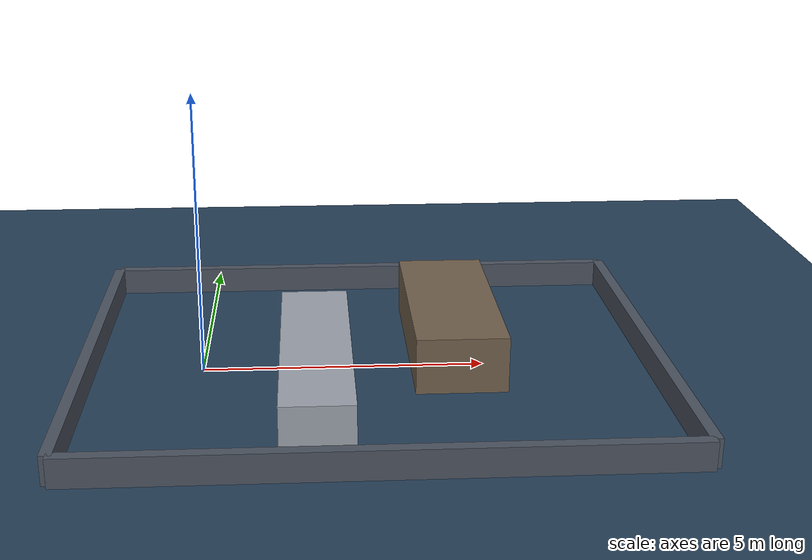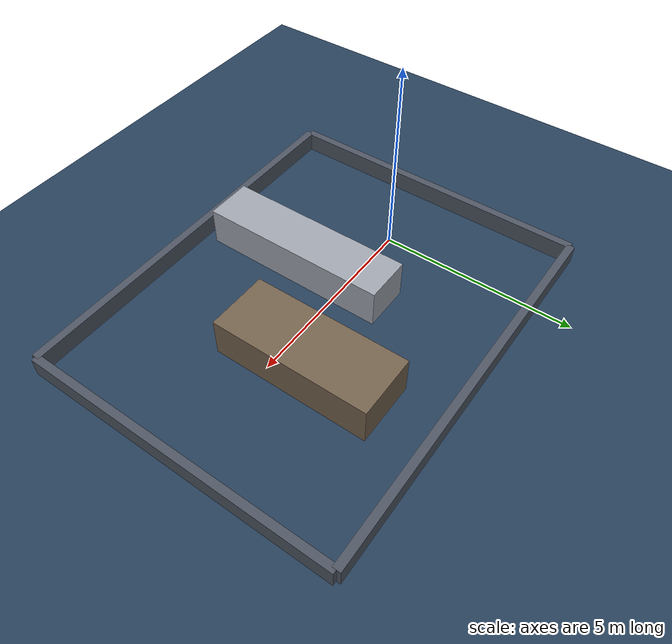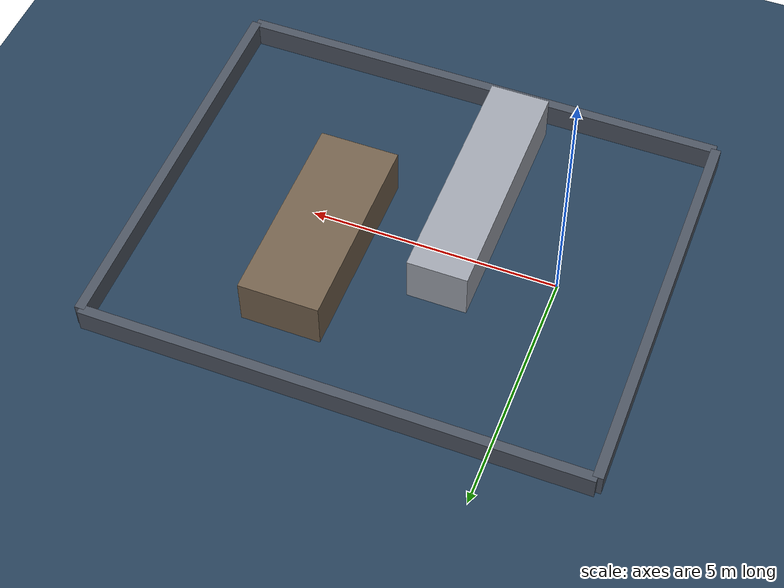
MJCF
<?xml version="1.0" encoding="utf-8"?>
<mujoco model="map_warehouse">
  <statistic center="3 0 0.1" extent="6" />
  <visual>
    <headlight diffuse="0.6 0.6 0.6" ambient="0.3 0.3 0.3" specular="0 0 0" />
    <rgba haze="0.15 0.25 0.35 1" />
    <global azimuth="135" elevation="-25" />
    <quality shadowsize="4096" />
  </visual>
  <asset>
    <texture type="skybox" builtin="gradient" rgb1="0.3 0.5 0.7" rgb2="0 0 0" width="512" height="3072" />
    <texture type="2d" name="groundplane" builtin="checker" mark="edge" rgb1="0.2 0.3 0.4" rgb2="0.1 0.2 0.3" markrgb="0.8 0.8 0.8" width="300" height="300" />
    <material name="groundplane" texture="groundplane" texuniform="true" texrepeat="5 5" reflectance="0.2" />
    <material name="wall" rgba="0.62 0.64 0.68 1" reflectance="0.05" />
    <material name="shelf" rgba="0.45 0.38 0.30 1" reflectance="0.04" />
    <material name="boundary" rgba="0.30 0.33 0.38 1" reflectance="0.03" />
  </asset>
  <worldbody>
    <light pos="0 0 3" dir="0 0 -1" directional="true" castshadow="true" />
    <geom name="floor" size="0 0 0.05" type="plane" material="groundplane" />

    <!-- MAPS["warehouse"].obstacles[0]：中心 (2.0,-1.2)，半宽 0.6 / 半长 2.4，高 1.0m -->
    <body name="warehouse_wall_a" pos="2.0 -1.2 0">
      <geom name="wall_a" type="box" size="0.6 2.4 0.5" pos="0 0 0.5" material="wall" />
    </body>
    <!-- MAPS["warehouse"].obstacles[1]：中心 (4.5,0.8)，半宽 0.8 / 半长 2.0，高 1.0m -->
    <body name="warehouse_shelf_b" pos="4.5 0.8 0">
      <geom name="shelf_b" type="box" size="0.8 2.0 0.5" pos="0 0 0.5" material="shelf" />
    </body>

    <!-- 场地边界（bounds [-2,8,-4,4] 的低墙，只作视觉参照，不参与导航判据） -->
    <body name="boundary" pos="0 0 0">
      <geom name="b_south" type="box" size="5.0 0.1 0.25" pos="3 -4 0.25" material="boundary" />
      <geom name="b_north" type="box" size="5.0 0.1 0.25" pos="3 4 0.25" material="boundary" />
      <geom name="b_west" type="box" size="0.1 4.0 0.25" pos="-2 0 0.25" material="boundary" />
      <geom name="b_east" type="box" size="0.1 4.0 0.25" pos="8 0 0.25" material="boundary" />
    </body>
  </worldbody>
</mujoco>
